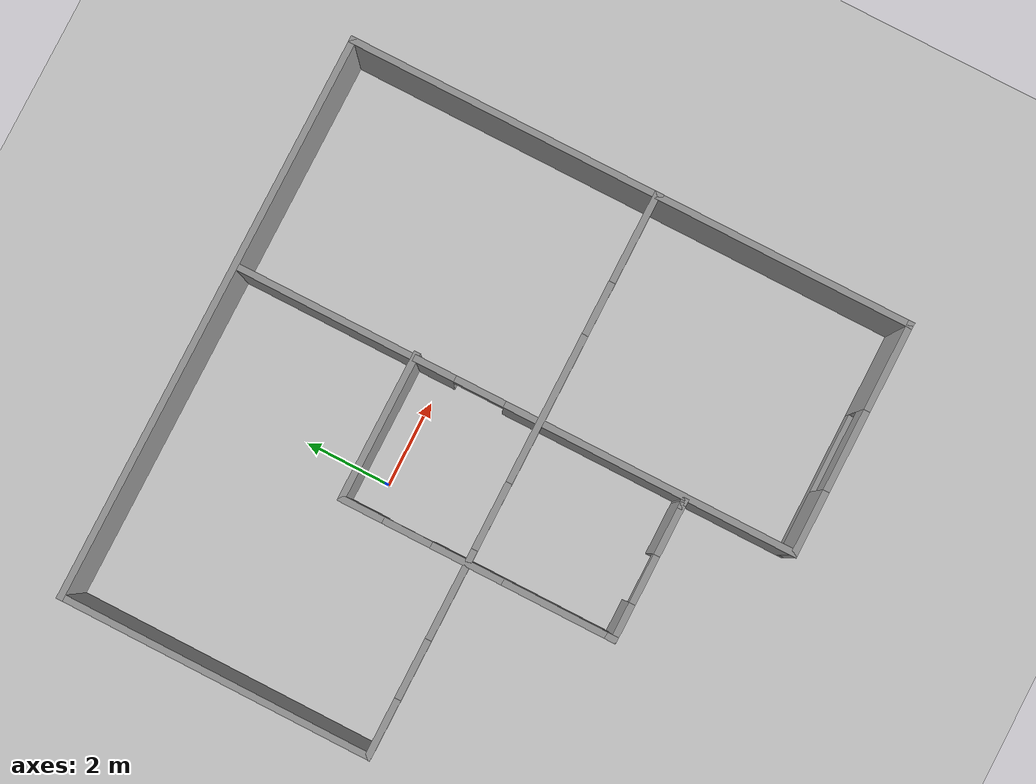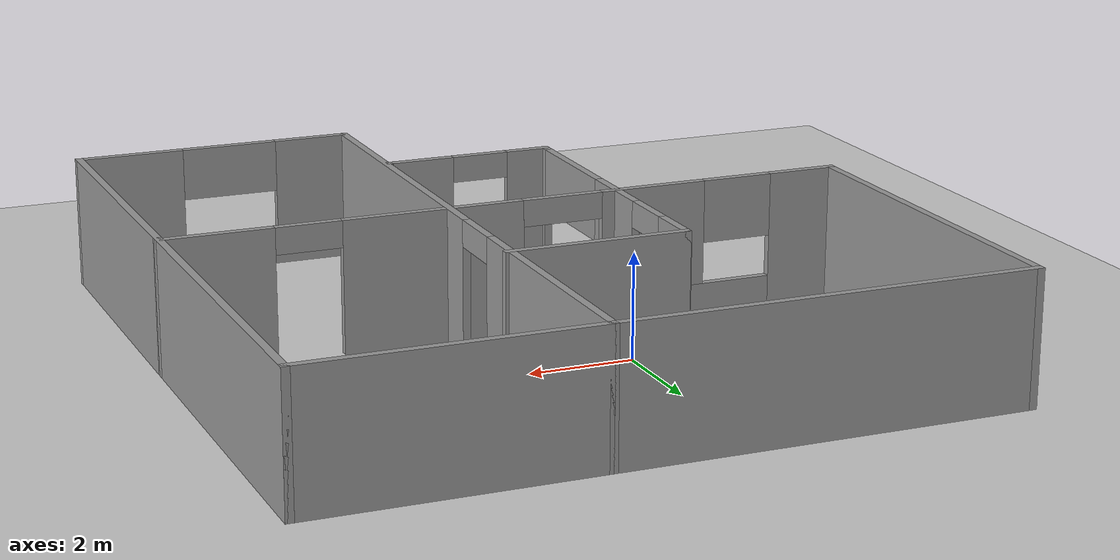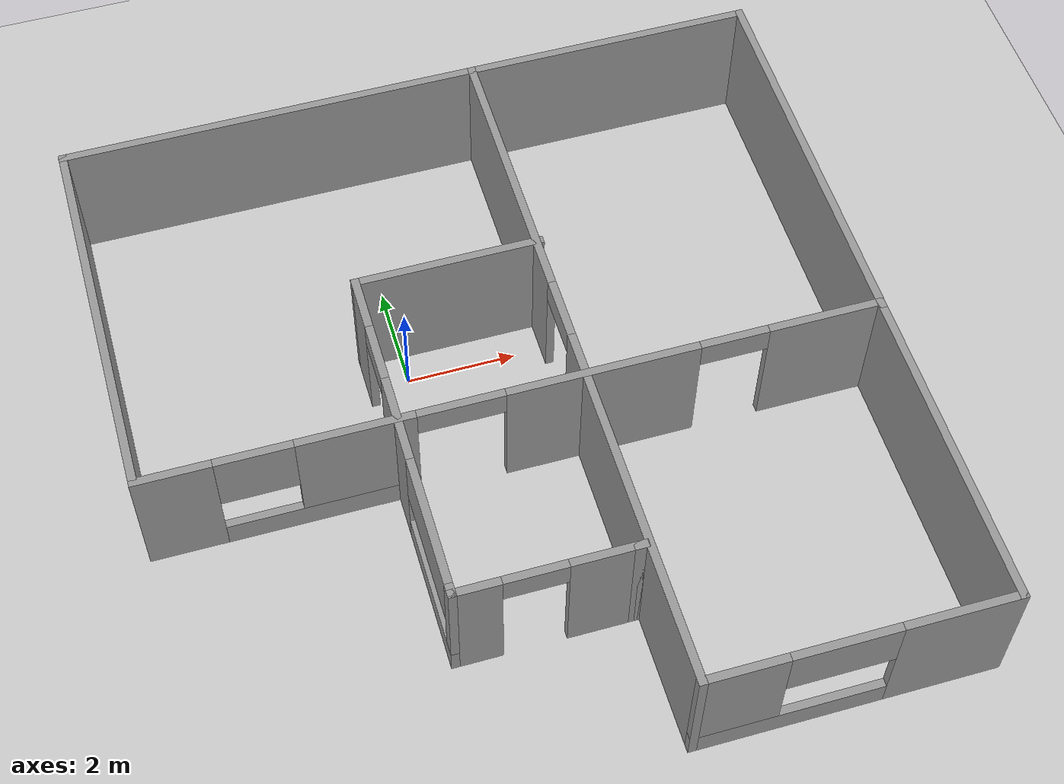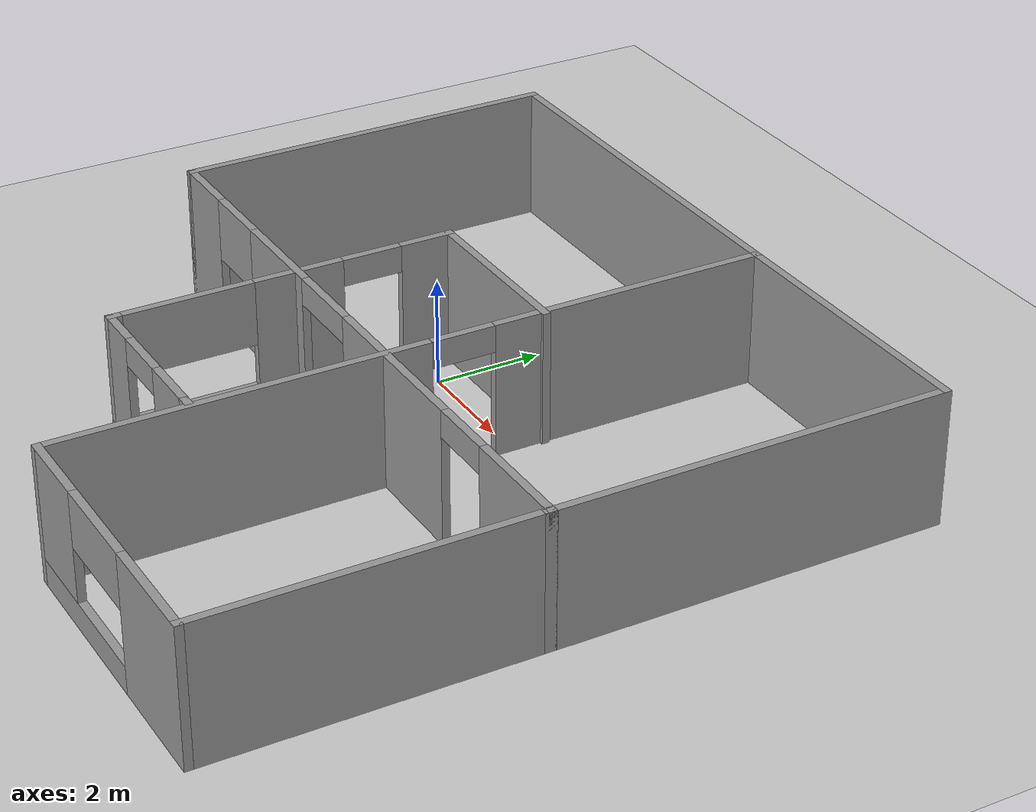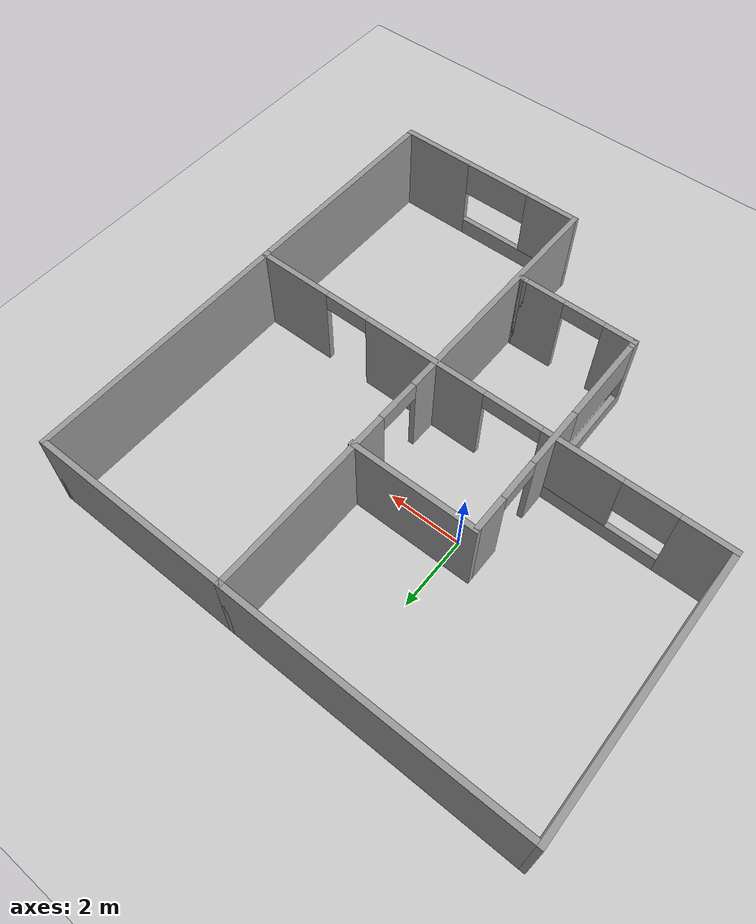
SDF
<sdf version="1.7">
 <world name="default">
  <light name="sun" type="directional">
   <pose>0 0 10 0 -0 0</pose>
   <diffuse>0.8 0.8 0.8 1</diffuse>
   <specular>0.2 0.2 0.2 1</specular>
   <attenuation>
    <range>1000</range>
    <constant>0.9</constant>
    <linear>0.01</linear>
    <quadratic>0.001</quadratic>
   </attenuation>
   <direction>-0.5 0.1 -0.9</direction>
   <spot><inner_angle>0</inner_angle><outer_angle>0</outer_angle><falloff>0</falloff></spot>
  </light>
  <model name="ground_plane">
   <static>1</static>
   <link name="link">
    <collision name="collision">
     <geometry><plane><normal>0 0 1</normal><size>100 100</size></plane></geometry>
     <surface>
      <contact><collide_bitmask>65535</collide_bitmask></contact>
      <friction><ode><mu>100</mu><mu2>50</mu2></ode></friction>
     </surface>
    </collision>
    <visual name="visual">
     <cast_shadows>0</cast_shadows>
     <geometry><plane><normal>0 0 1</normal><size>100 100</size></plane></geometry>
     <material>
      <script><uri>file://media/materials/scripts/gazebo.material</uri><name>Gazebo/Grey</name></script>
     </material>
    </visual>
   </link>
  </model>
  <gravity>0 0 -9.8</gravity>
  <magnetic_field>6e-06 2.3e-05 -4.2e-05</magnetic_field>
  <atmosphere type="adiabatic"/>
  <physics type="ode">
   <max_step_size>0.001</max_step_size>
   <real_time_factor>1</real_time_factor>
   <real_time_update_rate>1000</real_time_update_rate>
  </physics>
  <scene><ambient>0.4 0.4 0.4 1</ambient><background>0.7 0.7 0.7 1</background><shadows>1</shadows></scene>
  <spherical_coordinates>
   <surface_model>EARTH_WGS84</surface_model>
   <latitude_deg>0</latitude_deg>
   <longitude_deg>0</longitude_deg>
   <elevation>0</elevation>
   <heading_deg>0</heading_deg>
  </spherical_coordinates>
  <model name="Floorplan">
   <pose>1.39169 -1.70149 0 0 -0 0</pose>
   <link name="Wall_0">
    <collision name="Wall_0_Collision">
     <geometry><box><size>13.25 0.15 2.5</size></box></geometry>
     <pose>0 0 1.25 0 -0 0</pose>
    </collision>
    <visual name="Wall_0_Visual">
     <pose>0 0 1.25 0 -0 0</pose>
     <geometry><box><size>13.25 0.15 2.5</size></box></geometry>
     <material>
      <script><uri>file://media/materials/scripts/gazebo.material</uri><name>Gazebo/Grey</name></script>
      <ambient>1 1 1 1</ambient>
     </material>
     <meta><layer>0</layer></meta>
    </visual>
    <pose>-0 6.55 0 0 -0 0</pose>
   </link>
   <link name="Wall_1">
    <collision name="Wall_1_Collision">
     <geometry><box><size>13.25 0.15 2.5</size></box></geometry>
     <pose>0 0 1.25 0 -0 0</pose>
    </collision>
    <visual name="Wall_1_Visual">
     <pose>0 0 1.25 0 -0 0</pose>
     <geometry><box><size>13.25 0.15 2.5</size></box></geometry>
     <material>
      <script><uri>file://media/materials/scripts/gazebo.material</uri><name>Gazebo/Grey</name></script>
      <ambient>1 1 1 1</ambient>
     </material>
     <meta><layer>0</layer></meta>
    </visual>
    <pose>6.55 0 0 0 -0 -1.5708</pose>
   </link>
   <link name="Wall_10">
    <collision name="Wall_10_Collision">
     <geometry><box><size>3.5 0.15 2.5</size></box></geometry>
     <pose>0 0 1.25 0 -0 0</pose>
    </collision>
    <visual name="Wall_10_Visual">
     <pose>0 0 1.25 0 -0 0</pose>
     <geometry><box><size>3.5 0.15 2.5</size></box></geometry>
     <material>
      <script><uri>file://media/materials/scripts/gazebo.material</uri><name>Gazebo/Grey</name></script>
      <ambient>1 1 1 1</ambient>
     </material>
     <meta><layer>0</layer></meta>
    </visual>
    <pose>-0.419203 2.32102 0 0 -0 3.14159</pose>
   </link>
   <link name="Wall_11">
    <pose>-2.0942 -0.853976 0 0 -0 -1.5708</pose>
    <visual name="Wall_11_Visual_0">
     <pose>-2.72388 0 1.25 0 -0 0</pose>
     <geometry><box><size>1.05224 0.15 2.5</size></box></geometry>
     <material>
      <script><uri>file://media/materials/scripts/gazebo.material</uri><name>Gazebo/Grey</name></script>
      <ambient>1 1 1 1</ambient>
     </material>
     <meta><layer>0</layer></meta>
    </visual>
    <collision name="Wall_11_Collision_0">
     <geometry><box><size>1.05224 0.15 2.5</size></box></geometry>
     <pose>-2.72388 0 1.25 0 -0 0</pose>
    </collision>
    <visual name="Wall_11_Visual_1">
     <pose>-0.24734 0 1.25 0 -0 0</pose>
     <geometry><box><size>1.66877 0.15 2.5</size></box></geometry>
     <material>
      <script><uri>file://media/materials/scripts/gazebo.material</uri><name>Gazebo/Grey</name></script>
      <ambient>1 1 1 1</ambient>
     </material>
     <meta><layer>0</layer></meta>
    </visual>
    <collision name="Wall_11_Collision_1">
     <geometry><box><size>1.66877 0.15 2.5</size></box></geometry>
     <pose>-0.24734 0 1.25 0 -0 0</pose>
    </collision>
    <visual name="Wall_11_Visual_2">
     <pose>1.91852 0 0.25 0 -0 0</pose>
     <geometry><box><size>2.66296 0.15 0.5</size></box></geometry>
     <material>
      <script><uri>file://media/materials/scripts/gazebo.material</uri><name>Gazebo/Grey</name></script>
      <ambient>1 1 1 1</ambient>
     </material>
     <meta><layer>0</layer></meta>
    </visual>
    <collision name="Wall_11_Collision_2">
     <geometry><box><size>2.66296 0.15 0.5</size></box></geometry>
     <pose>1.91852 0 0.25 0 -0 0</pose>
    </collision>
    <visual name="Wall_11_Visual_3">
     <pose>3.11898 0 1.5 0 -0 0</pose>
     <geometry><box><size>0.262046 0.15 2</size></box></geometry>
     <material>
      <script><uri>file://media/materials/scripts/gazebo.material</uri><name>Gazebo/Grey</name></script>
      <ambient>1 1 1 1</ambient>
     </material>
     <meta><layer>0</layer></meta>
    </visual>
    <collision name="Wall_11_Collision_3">
     <geometry><box><size>0.262046 0.15 2</size></box></geometry>
     <pose>3.11898 0 1.5 0 -0 0</pose>
    </collision>
    <visual name="Wall_11_Visual_4">
     <pose>1.7875 0 1.9 0 -0 0</pose>
     <geometry><box><size>2.40091 0.15 1.2</size></box></geometry>
     <material>
      <script><uri>file://media/materials/scripts/gazebo.material</uri><name>Gazebo/Grey</name></script>
      <ambient>1 1 1 1</ambient>
     </material>
     <meta><layer>0</layer></meta>
    </visual>
    <collision name="Wall_11_Collision_4">
     <geometry><box><size>2.40091 0.15 1.2</size></box></geometry>
     <pose>1.7875 0 1.9 0 -0 0</pose>
    </collision>
    <visual name="Wall_11_Visual_5">
     <pose>-1.63975 0 2.25 0 -0 0</pose>
     <geometry><box><size>1.11604 0.15 0.5</size></box></geometry>
     <material>
      <script><uri>file://media/materials/scripts/gazebo.material</uri><name>Gazebo/Grey</name></script>
      <ambient>1 1 1 1</ambient>
     </material>
     <meta><layer>0</layer></meta>
    </visual>
    <collision name="Wall_11_Collision_5">
     <geometry><box><size>1.11604 0.15 0.5</size></box></geometry>
     <pose>-1.63975 0 2.25 0 -0 0</pose>
    </collision>
   </link>
   <link name="Wall_12">
    <pose>-0.544203 -4.02897 0 0 -0 0</pose>
    <visual name="Wall_12_Visual_0">
     <pose>-1.17371 0 1.25 0 -0 0</pose>
     <geometry><box><size>0.902576 0.15 2.5</size></box></geometry>
     <material>
      <script><uri>file://media/materials/scripts/gazebo.material</uri><name>Gazebo/Grey</name></script>
      <ambient>1 1 1 1</ambient>
     </material>
     <meta><layer>0</layer></meta>
    </visual>
    <collision name="Wall_12_Collision_0">
     <geometry><box><size>0.902576 0.15 2.5</size></box></geometry>
     <pose>-1.17371 0 1.25 0 -0 0</pose>
    </collision>
    <visual name="Wall_12_Visual_1">
     <pose>1.01067 0 1.25 0 -0 0</pose>
     <geometry><box><size>1.22867 0.15 2.5</size></box></geometry>
     <material>
      <script><uri>file://media/materials/scripts/gazebo.material</uri><name>Gazebo/Grey</name></script>
      <ambient>1 1 1 1</ambient>
     </material>
     <meta><layer>0</layer></meta>
    </visual>
    <collision name="Wall_12_Collision_1">
     <geometry><box><size>1.22867 0.15 2.5</size></box></geometry>
     <pose>1.01067 0 1.25 0 -0 0</pose>
    </collision>
    <visual name="Wall_12_Visual_2">
     <pose>-0.163045 0 2.25 0 -0 0</pose>
     <geometry><box><size>1.11876 0.15 0.5</size></box></geometry>
     <material>
      <script><uri>file://media/materials/scripts/gazebo.material</uri><name>Gazebo/Grey</name></script>
      <ambient>1 1 1 1</ambient>
     </material>
     <meta><layer>0</layer></meta>
    </visual>
    <collision name="Wall_12_Collision_2">
     <geometry><box><size>1.11876 0.15 0.5</size></box></geometry>
     <pose>-0.163045 0 2.25 0 -0 0</pose>
    </collision>
   </link>
   <link name="Wall_13">
    <collision name="Wall_13_Collision">
     <geometry><box><size>0.25 0.15 2.5</size></box></geometry>
     <pose>0 0 1.25 0 -0 0</pose>
    </collision>
    <visual name="Wall_13_Visual">
     <pose>0 0 1.25 0 -0 0</pose>
     <geometry><box><size>0.25 0.15 2.5</size></box></geometry>
     <material>
      <script><uri>file://media/materials/scripts/gazebo.material</uri><name>Gazebo/Grey</name></script>
      <ambient>1 1 1 1</ambient>
     </material>
     <meta><layer>0</layer></meta>
    </visual>
    <pose>1.0558 -4.02897 0 0 -0 0</pose>
   </link>
   <link name="Wall_14">
    <collision name="Wall_14_Collision">
     <geometry><box><size>0.16 0.15 2.5</size></box></geometry>
     <pose>0 0 1.25 0 -0 0</pose>
    </collision>
    <visual name="Wall_14_Visual">
     <pose>0 0 1.25 0 -0 0</pose>
     <geometry><box><size>0.16 0.15 2.5</size></box></geometry>
     <material>
      <script><uri>file://media/materials/scripts/gazebo.material</uri><name>Gazebo/Grey</name></script>
      <ambient>1 1 1 1</ambient>
     </material>
     <meta><layer>0</layer></meta>
    </visual>
    <pose>1.1108 -4.02897 0 0 -0 0</pose>
   </link>
   <link name="Wall_2">
    <pose>3.875 -6.55 0 0 -0 3.14159</pose>
    <visual name="Wall_2_Visual_0">
     <pose>-1.7016 0 1.25 0 -0 0</pose>
     <geometry><box><size>2.09681 0.15 2.5</size></box></geometry>
     <material>
      <script><uri>file://media/materials/scripts/gazebo.material</uri><name>Gazebo/Grey</name></script>
      <ambient>1 1 1 1</ambient>
     </material>
     <meta><layer>0</layer></meta>
    </visual>
    <collision name="Wall_2_Collision_0">
     <geometry><box><size>2.09681 0.15 2.5</size></box></geometry>
     <pose>-1.7016 0 1.25 0 -0 0</pose>
    </collision>
    <visual name="Wall_2_Visual_1">
     <pose>1.0484 0 0.25 0 -0 0</pose>
     <geometry><box><size>3.40319 0.15 0.5</size></box></geometry>
     <material>
      <script><uri>file://media/materials/scripts/gazebo.material</uri><name>Gazebo/Grey</name></script>
      <ambient>1 1 1 1</ambient>
     </material>
     <meta><layer>0</layer></meta>
    </visual>
    <collision name="Wall_2_Collision_1">
     <geometry><box><size>3.40319 0.15 0.5</size></box></geometry>
     <pose>1.0484 0 0.25 0 -0 0</pose>
    </collision>
    <visual name="Wall_2_Visual_2">
     <pose>1.9874 0 1.5 0 -0 0</pose>
     <geometry><box><size>1.52519 0.15 2</size></box></geometry>
     <material>
      <script><uri>file://media/materials/scripts/gazebo.material</uri><name>Gazebo/Grey</name></script>
      <ambient>1 1 1 1</ambient>
     </material>
     <meta><layer>0</layer></meta>
    </visual>
    <collision name="Wall_2_Collision_2">
     <geometry><box><size>1.52519 0.15 2</size></box></geometry>
     <pose>1.9874 0 1.5 0 -0 0</pose>
    </collision>
    <visual name="Wall_2_Visual_3">
     <pose>0.285807 0 2 0 -0 0</pose>
     <geometry><box><size>1.878 0.15 1</size></box></geometry>
     <material>
      <script><uri>file://media/materials/scripts/gazebo.material</uri><name>Gazebo/Grey</name></script>
      <ambient>1 1 1 1</ambient>
     </material>
     <meta><layer>0</layer></meta>
    </visual>
    <collision name="Wall_2_Collision_3">
     <geometry><box><size>1.878 0.15 1</size></box></geometry>
     <pose>0.285807 0 2 0 -0 0</pose>
    </collision>
   </link>
   <link name="Wall_3">
    <pose>1.2 0 0 0 -0 1.5708</pose>
    <visual name="Wall_3_Visual_0">
     <pose>-3.20624 0 1.25 0 -0 0</pose>
     <geometry><box><size>6.83751 0.15 2.5</size></box></geometry>
     <material>
      <script><uri>file://media/materials/scripts/gazebo.material</uri><name>Gazebo/Grey</name></script>
      <ambient>1 1 1 1</ambient>
     </material>
     <meta><layer>0</layer></meta>
    </visual>
    <collision name="Wall_3_Collision_0">
     <geometry><box><size>6.83751 0.15 2.5</size></box></geometry>
     <pose>-3.20624 0 1.25 0 -0 0</pose>
    </collision>
    <visual name="Wall_3_Visual_1">
     <pose>3.99952 0 1.25 0 -0 0</pose>
     <geometry><box><size>5.25096 0.15 2.5</size></box></geometry>
     <material>
      <script><uri>file://media/materials/scripts/gazebo.material</uri><name>Gazebo/Grey</name></script>
      <ambient>1 1 1 1</ambient>
     </material>
     <meta><layer>0</layer></meta>
    </visual>
    <collision name="Wall_3_Collision_1">
     <geometry><box><size>5.25096 0.15 2.5</size></box></geometry>
     <pose>3.99952 0 1.25 0 -0 0</pose>
    </collision>
    <visual name="Wall_3_Visual_2">
     <pose>0.793274 0 2.25 0 -0 0</pose>
     <geometry><box><size>1.16152 0.15 0.5</size></box></geometry>
     <material>
      <script><uri>file://media/materials/scripts/gazebo.material</uri><name>Gazebo/Grey</name></script>
      <ambient>1 1 1 1</ambient>
     </material>
     <meta><layer>0</layer></meta>
    </visual>
    <collision name="Wall_3_Collision_2">
     <geometry><box><size>1.16152 0.15 0.5</size></box></geometry>
     <pose>0.793274 0 2.25 0 -0 0</pose>
    </collision>
   </link>
   <link name="Wall_4">
    <collision name="Wall_4_Collision">
     <geometry><box><size>0.15 0.15 2.5</size></box></geometry>
     <pose>0 0 1.25 0 -0 0</pose>
    </collision>
    <visual name="Wall_4_Visual">
     <pose>0 0 1.25 0 -0 0</pose>
     <geometry><box><size>0.15 0.15 2.5</size></box></geometry>
     <material>
      <script><uri>file://media/materials/scripts/gazebo.material</uri><name>Gazebo/Grey</name></script>
      <ambient>1 1 1 1</ambient>
     </material>
     <meta><layer>0</layer></meta>
    </visual>
    <pose>1.2 6.55 0 0 -0 0</pose>
   </link>
   <link name="Wall_6">
    <collision name="Wall_6_Collision">
     <geometry><box><size>7.31853 0.15 2.5</size></box></geometry>
     <pose>0 0 1.25 0 -0 0</pose>
    </collision>
    <visual name="Wall_6_Visual">
     <pose>0 0 1.25 0 -0 0</pose>
     <geometry><box><size>7.31853 0.15 2.5</size></box></geometry>
     <material>
      <script><uri>file://media/materials/scripts/gazebo.material</uri><name>Gazebo/Grey</name></script>
      <ambient>1 1 1 1</ambient>
     </material>
     <meta><layer>0</layer></meta>
    </visual>
    <pose>-6.55 2.96574 0 0 -0 -1.5708</pose>
   </link>
   <link name="Wall_7">
    <pose>-0 -0.618526 0 0 -0 0</pose>
    <visual name="Wall_7_Visual_0">
     <pose>-5.92929 0 1.25 0 -0 0</pose>
     <geometry><box><size>1.39141 0.15 2.5</size></box></geometry>
     <material>
      <script><uri>file://media/materials/scripts/gazebo.material</uri><name>Gazebo/Grey</name></script>
      <ambient>1 1 1 1</ambient>
     </material>
     <meta><layer>0</layer></meta>
    </visual>
    <collision name="Wall_7_Collision_0">
     <geometry><box><size>1.39141 0.15 2.5</size></box></geometry>
     <pose>-5.92929 0 1.25 0 -0 0</pose>
    </collision>
    <visual name="Wall_7_Visual_1">
     <pose>1.5186 0 1.25 0 -0 0</pose>
     <geometry><box><size>3.46237 0.15 2.5</size></box></geometry>
     <material>
      <script><uri>file://media/materials/scripts/gazebo.material</uri><name>Gazebo/Grey</name></script>
      <ambient>1 1 1 1</ambient>
     </material>
     <meta><layer>0</layer></meta>
    </visual>
    <collision name="Wall_7_Collision_1">
     <geometry><box><size>3.46237 0.15 2.5</size></box></geometry>
     <pose>1.5186 0 1.25 0 -0 0</pose>
    </collision>
    <visual name="Wall_7_Visual_2">
     <pose>5.55762 0 1.25 0 -0 0</pose>
     <geometry><box><size>2.13476 0.15 2.5</size></box></geometry>
     <material>
      <script><uri>file://media/materials/scripts/gazebo.material</uri><name>Gazebo/Grey</name></script>
      <ambient>1 1 1 1</ambient>
     </material>
     <meta><layer>0</layer></meta>
    </visual>
    <collision name="Wall_7_Collision_2">
     <geometry><box><size>2.13476 0.15 2.5</size></box></geometry>
     <pose>5.55762 0 1.25 0 -0 0</pose>
    </collision>
    <visual name="Wall_7_Visual_3">
     <pose>-3.50287 0 0.25 0 -0 0</pose>
     <geometry><box><size>3.46143 0.15 0.5</size></box></geometry>
     <material>
      <script><uri>file://media/materials/scripts/gazebo.material</uri><name>Gazebo/Grey</name></script>
      <ambient>1 1 1 1</ambient>
     </material>
     <meta><layer>0</layer></meta>
    </visual>
    <collision name="Wall_7_Collision_3">
     <geometry><box><size>3.46143 0.15 0.5</size></box></geometry>
     <pose>-3.50287 0 0.25 0 -0 0</pose>
    </collision>
    <visual name="Wall_7_Visual_4">
     <pose>-2.81564 0 1.5 0 -0 0</pose>
     <geometry><box><size>2.08696 0.15 2</size></box></geometry>
     <material>
      <script><uri>file://media/materials/scripts/gazebo.material</uri><name>Gazebo/Grey</name></script>
      <ambient>1 1 1 1</ambient>
     </material>
     <meta><layer>0</layer></meta>
    </visual>
    <collision name="Wall_7_Collision_4">
     <geometry><box><size>2.08696 0.15 2</size></box></geometry>
     <pose>-2.81564 0 1.5 0 -0 0</pose>
    </collision>
    <visual name="Wall_7_Visual_5">
     <pose>-4.54635 0 1.9 0 -0 0</pose>
     <geometry><box><size>1.37447 0.15 1.2</size></box></geometry>
     <material>
      <script><uri>file://media/materials/scripts/gazebo.material</uri><name>Gazebo/Grey</name></script>
      <ambient>1 1 1 1</ambient>
     </material>
     <meta><layer>0</layer></meta>
    </visual>
    <collision name="Wall_7_Collision_5">
     <geometry><box><size>1.37447 0.15 1.2</size></box></geometry>
     <pose>-4.54635 0 1.9 0 -0 0</pose>
    </collision>
    <visual name="Wall_7_Visual_6">
     <pose>3.87002 0 2.25 0 -0 0</pose>
     <geometry><box><size>1.24045 0.15 0.5</size></box></geometry>
     <material>
      <script><uri>file://media/materials/scripts/gazebo.material</uri><name>Gazebo/Grey</name></script>
      <ambient>1 1 1 1</ambient>
     </material>
     <meta><layer>0</layer></meta>
    </visual>
    <collision name="Wall_7_Collision_6">
     <geometry><box><size>1.24045 0.15 0.5</size></box></geometry>
     <pose>3.87002 0 2.25 0 -0 0</pose>
    </collision>
    <visual name="Wall_7_Visual_7">
     <pose>-0.992372 0 2.25 0 -0 0</pose>
     <geometry><box><size>1.55958 0.15 0.5</size></box></geometry>
     <material>
      <script><uri>file://media/materials/scripts/gazebo.material</uri><name>Gazebo/Grey</name></script>
      <ambient>1 1 1 1</ambient>
     </material>
     <meta><layer>0</layer></meta>
    </visual>
    <collision name="Wall_7_Collision_7">
     <geometry><box><size>1.55958 0.15 0.5</size></box></geometry>
     <pose>-0.992372 0 2.25 0 -0 0</pose>
    </collision>
   </link>
   <link name="Wall_8">
    <collision name="Wall_8_Collision">
     <geometry><box><size>0.210491 0.15 2.5</size></box></geometry>
     <pose>0 0 1.25 0 -0 0</pose>
    </collision>
    <visual name="Wall_8_Visual">
     <pose>0 0 1.25 0 -0 0</pose>
     <geometry><box><size>0.210491 0.15 2.5</size></box></geometry>
     <material>
      <script><uri>file://media/materials/scripts/gazebo.material</uri><name>Gazebo/Grey</name></script>
      <ambient>1 1 1 1</ambient>
     </material>
     <meta><layer>0</layer></meta>
    </visual>
    <pose>6.55 -0.648771 0 0 -0 -1.5708</pose>
   </link>
   <static>1</static>
  </model>
 </world>
</sdf>
